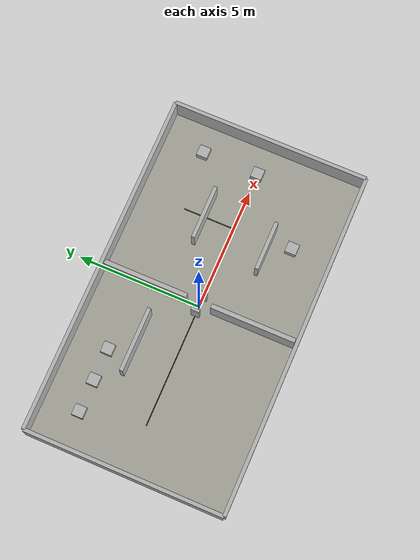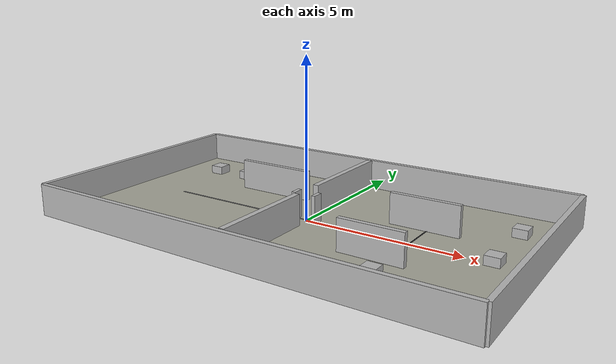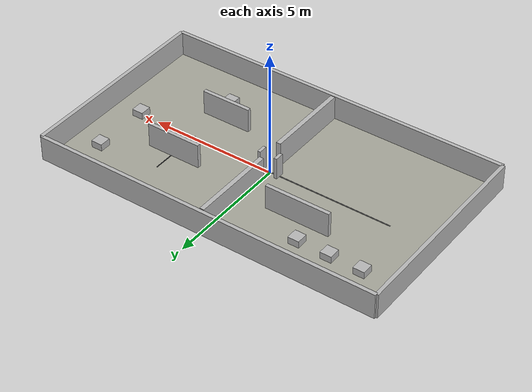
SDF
<?xml version="1.0" ?>
<sdf version="1.7">
  <world name="teknofest_arena">

    <include>
      <uri>model://sun</uri>
    </include>

    <!-- Ground -->
    <model name="ground">
      <static>true</static>
      <pose>0 0 0 0 0 0</pose>
      <link name="link">
        <collision name="collision">
          <geometry>
            <box>
              <size>14 8 0.05</size>
            </box>
          </geometry>
        </collision>
        <visual name="visual">
          <geometry>
            <box>
              <size>14 8 0.05</size>
            </box>
          </geometry>
          <material>
            <ambient>0.65 0.65 0.60 1</ambient>
            <diffuse>0.65 0.65 0.60 1</diffuse>
          </material>
        </visual>
      </link>
    </model>

    <!-- Outer walls -->
    <model name="wall_front">
      <static>true</static>
      <pose>0 -4 0.5 0 0 0</pose>
      <link name="link">
        <collision name="collision"><geometry><box><size>14 0.15 1.0</size></box></geometry></collision>
        <visual name="visual"><geometry><box><size>14 0.15 1.0</size></box></geometry></visual>
      </link>
    </model>

    <model name="wall_back">
      <static>true</static>
      <pose>0 4 0.5 0 0 0</pose>
      <link name="link">
        <collision name="collision"><geometry><box><size>14 0.15 1.0</size></box></geometry></collision>
        <visual name="visual"><geometry><box><size>14 0.15 1.0</size></box></geometry></visual>
      </link>
    </model>

    <model name="wall_left">
      <static>true</static>
      <pose>-7 0 0.5 0 0 0</pose>
      <link name="link">
        <collision name="collision"><geometry><box><size>0.15 8 1.0</size></box></geometry></collision>
        <visual name="visual"><geometry><box><size>0.15 8 1.0</size></box></geometry></visual>
      </link>
    </model>

    <model name="wall_right">
      <static>true</static>
      <pose>7 0 0.5 0 0 0</pose>
      <link name="link">
        <collision name="collision"><geometry><box><size>0.15 8 1.0</size></box></geometry></collision>
        <visual name="visual"><geometry><box><size>0.15 8 1.0</size></box></geometry></visual>
      </link>
    </model>

    <!-- Middle vertical separation walls with gate opening -->
    <model name="middle_wall_top">
      <static>true</static>
      <pose>0 2.2 0.5 0 0 0</pose>
      <link name="link">
        <collision name="collision"><geometry><box><size>0.18 3.4 1.0</size></box></geometry></collision>
        <visual name="visual"><geometry><box><size>0.18 3.4 1.0</size></box></geometry></visual>
      </link>
    </model>

    <model name="middle_wall_bottom">
      <static>true</static>
      <pose>0 -2.2 0.5 0 0 0</pose>
      <link name="link">
        <collision name="collision"><geometry><box><size>0.18 3.4 1.0</size></box></geometry></collision>
        <visual name="visual"><geometry><box><size>0.18 3.4 1.0</size></box></geometry></visual>
      </link>
    </model>

    <!-- Gate posts -->
    <model name="gate_left_post">
      <static>true</static>
      <pose>-0.35 0 0.45 0 0 0</pose>
      <link name="link">
        <collision name="collision"><geometry><box><size>0.12 0.35 0.9</size></box></geometry></collision>
        <visual name="visual"><geometry><box><size>0.12 0.35 0.9</size></box></geometry></visual>
      </link>
    </model>

    <model name="gate_right_post">
      <static>true</static>
      <pose>0.35 0 0.45 0 0 0</pose>
      <link name="link">
        <collision name="collision"><geometry><box><size>0.12 0.35 0.9</size></box></geometry></collision>
        <visual name="visual"><geometry><box><size>0.12 0.35 0.9</size></box></geometry></visual>
      </link>
    </model>

    <!-- Internal left wall -->
    <model name="left_internal_wall">
      <static>true</static>
      <pose>-2.3 1.6 0.5 0 0 0</pose>
      <link name="link">
        <collision name="collision"><geometry><box><size>2.6 0.15 1.0</size></box></geometry></collision>
        <visual name="visual"><geometry><box><size>2.6 0.15 1.0</size></box></geometry></visual>
      </link>
    </model>

    <!-- Internal right walls -->
    <model name="right_internal_wall_top">
      <static>true</static>
      <pose>3.3 1.2 0.5 0 0 0</pose>
      <link name="link">
        <collision name="collision"><geometry><box><size>2.2 0.15 1.0</size></box></geometry></collision>
        <visual name="visual"><geometry><box><size>2.2 0.15 1.0</size></box></geometry></visual>
      </link>
    </model>

    <model name="right_internal_wall_bottom">
      <static>true</static>
      <pose>3.0 -1.5 0.5 0 0 0</pose>
      <link name="link">
        <collision name="collision"><geometry><box><size>2.0 0.15 1.0</size></box></geometry></collision>
        <visual name="visual"><geometry><box><size>2.0 0.15 1.0</size></box></geometry></visual>
      </link>
    </model>

    <!-- Pickup pallets left side -->
    <model name="pickup_p1">
      <static>true</static>
      <pose>-5.5 2.5 0.15 0 0 0</pose>
      <link name="link">
        <collision name="collision"><geometry><box><size>0.45 0.45 0.3</size></box></geometry></collision>
        <visual name="visual"><geometry><box><size>0.45 0.45 0.3</size></box></geometry></visual>
      </link>
    </model>

    <model name="pickup_p2">
      <static>true</static>
      <pose>-4.2 2.5 0.15 0 0 0</pose>
      <link name="link">
        <collision name="collision"><geometry><box><size>0.45 0.45 0.3</size></box></geometry></collision>
        <visual name="visual"><geometry><box><size>0.45 0.45 0.3</size></box></geometry></visual>
      </link>
    </model>

    <model name="pickup_p3">
      <static>true</static>
      <pose>-2.9 2.5 0.15 0 0 0</pose>
      <link name="link">
        <collision name="collision"><geometry><box><size>0.45 0.45 0.3</size></box></geometry></collision>
        <visual name="visual"><geometry><box><size>0.45 0.45 0.3</size></box></geometry></visual>
      </link>
    </model>

    <!-- Drop points right side -->
    <model name="drop_d1">
      <static>true</static>
      <pose>5.8 2.3 0.15 0 0 0</pose>
      <link name="link">
        <collision name="collision"><geometry><box><size>0.45 0.45 0.3</size></box></geometry></collision>
        <visual name="visual"><geometry><box><size>0.45 0.45 0.3</size></box></geometry></visual>
      </link>
    </model>

    <model name="drop_d2">
      <static>true</static>
      <pose>5.8 0.0 0.15 0 0 0</pose>
      <link name="link">
        <collision name="collision"><geometry><box><size>0.45 0.45 0.3</size></box></geometry></collision>
        <visual name="visual"><geometry><box><size>0.45 0.45 0.3</size></box></geometry></visual>
      </link>
    </model>

    <model name="drop_d3">
      <static>true</static>
      <pose>3.5 -2.4 0.15 0 0 0</pose>
      <link name="link">
        <collision name="collision"><geometry><box><size>0.45 0.45 0.3</size></box></geometry></collision>
        <visual name="visual"><geometry><box><size>0.45 0.45 0.3</size></box></geometry></visual>
      </link>
    </model>

    <!-- Visual dashed route lines, thin and non-collision -->
    <model name="route_center_line">
      <static>true</static>
      <pose>-2.0 0 0.035 0 0 0</pose>
      <link name="link">
        <visual name="visual">
          <geometry><box><size>6.0 0.04 0.01</size></box></geometry>
          <material><ambient>0 0 0 1</ambient><diffuse>0 0 0 1</diffuse></material>
        </visual>
      </link>
    </model>

    <model name="route_to_gate">
      <static>true</static>
      <pose>1.5 0 0.035 0 0 0</pose>
      <link name="link">
        <visual name="visual">
          <geometry><box><size>3.0 0.04 0.01</size></box></geometry>
          <material><ambient>0 0 0 1</ambient><diffuse>0 0 0 1</diffuse></material>
        </visual>
      </link>
    </model>

    <model name="route_right_vertical">
      <static>true</static>
      <pose>3.4 1.0 0.035 0 0 0</pose>
      <link name="link">
        <visual name="visual">
          <geometry><box><size>0.04 2.2 0.01</size></box></geometry>
          <material><ambient>0 0 0 1</ambient><diffuse>0 0 0 1</diffuse></material>
        </visual>
      </link>
    </model>

  </world>
</sdf>
